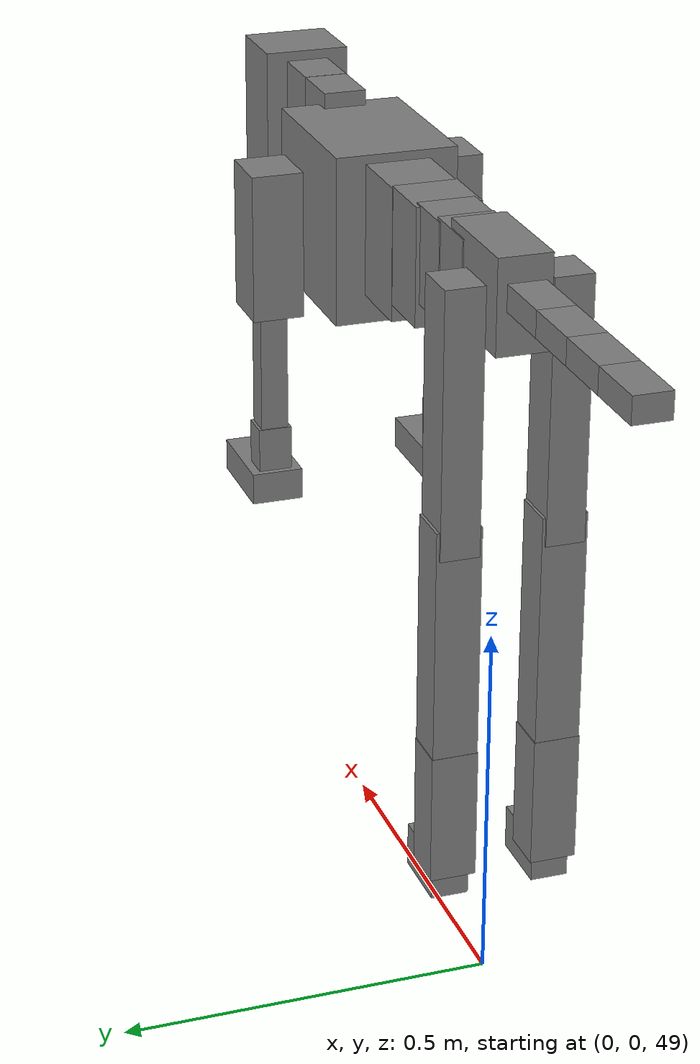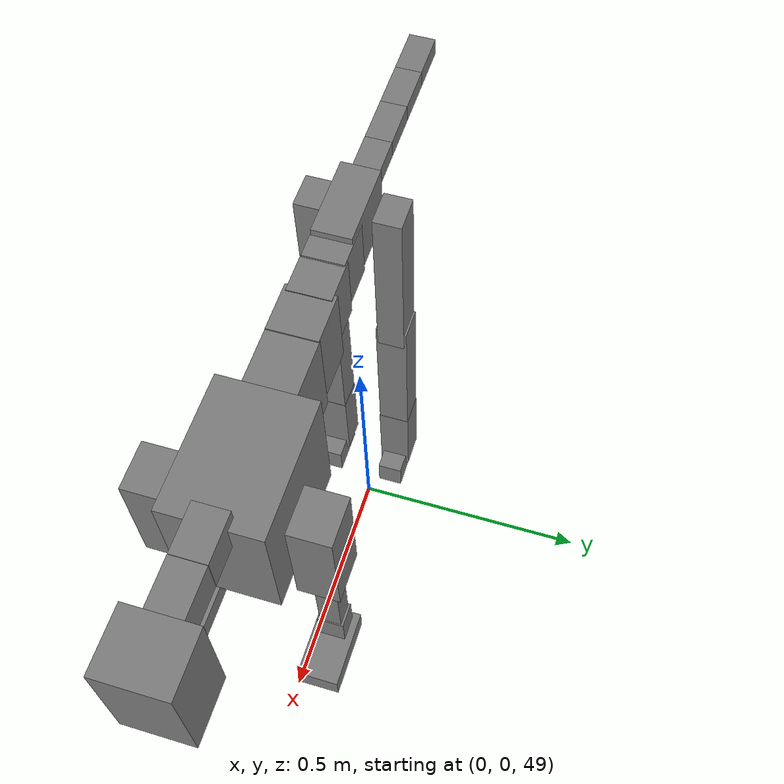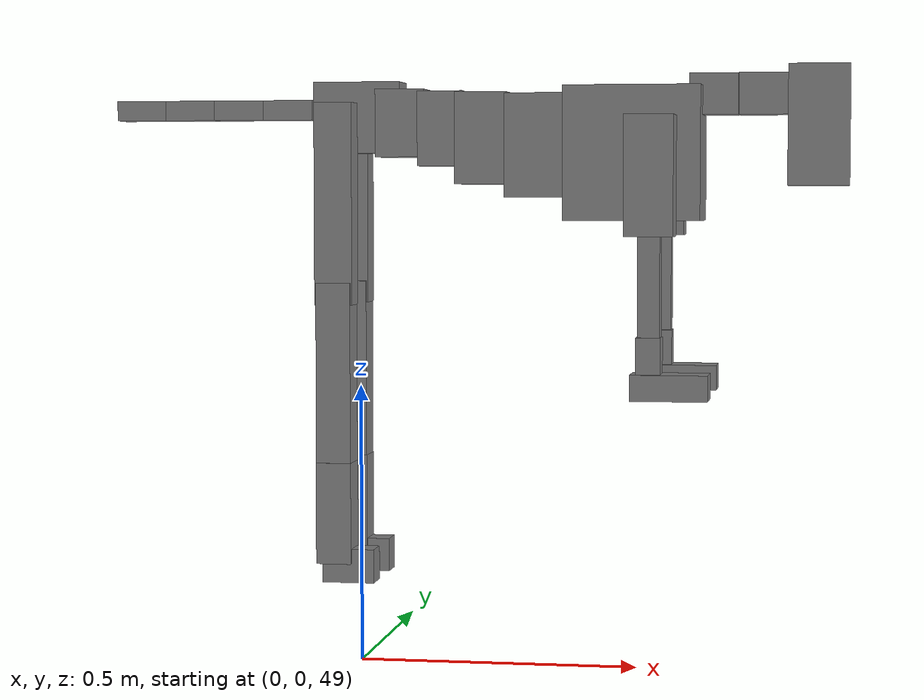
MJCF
<mujoco model="dog">

    <default>
        <joint armature="0.02" stiffness="1" damping="0.2" limited="true"/>
        <geom condim="3" friction="1 0.05 0.05" margin="0.01"/>
        <motor ctrllimited="true" ctrlrange="-1.0 1.0" forcelimited="true" gear="50"/>
    </default>

    <compiler inertiafromgeom="true" angle="radian"/>

    <option timestep="0.016" iterations="50" tolerance="1e-10" solver="Newton" jacobian="dense" cone="pyramidal"/>

    <size nconmax="20000" njmax="60000" nstack="5000000"/>
    <visual>
        <map force="0.1" zfar="30"/>
        <rgba haze="0.15 0.25 0.35 1"/>
        <quality shadowsize="2048"/>
        <global offwidth="800" offheight="800"/>
    </visual>

    <asset>
        <texture type="skybox" builtin="gradient" rgb1="0.3 0.5 0.7" rgb2="0 0 0" width="512" height="512"/>
        <texture name="texplane" type="2d" builtin="checker" rgb1=".2 .3 .4" rgb2=".1 0.15 0.2" width="512" height="512"
                 mark="cross" markrgb=".8 .8 .8"/>
        <texture name="texgeom" type="cube" builtin="flat" mark="cross" width="127" height="1278" rgb1="0.8 0.6 0.4"
                 rgb2="0.8 0.6 0.4" markrgb="1 1 1" random="0.01"/>

        <material name="matplane" reflectance="0.3" texture="texplane" texrepeat="1 1" texuniform="true"/>
        <material name="matgeom" texture="texgeom" texuniform="true" rgba="0.8 0.6 .4 1"/>
    </asset>

    <worldbody>
        <geom name="floor" pos="0 0 0" size="0 0 .25" type="plane" material="matplane" condim="3"/>

        <light directional="false" diffuse=".2 .2 .2" specular="0 0 0" pos="0 0 5" dir="0 0 -1" castshadow="false"/>
        <light mode="targetbodycom" target="torso" directional="false" diffuse=".8 .8 .8" specular="0.3 0.3 0.3"
               pos="0 0 4.0" dir="0 0 -1"/>

        <body name="root" pos="0 0 50">
            <freejoint name="root_1"/>
            <geom type="box" pos="0 0 -0.02" size="0.0774  0.0358  0.063" density="2030"/>

            <body name="spine1" pos="0.054 0 0">
                <joint name="spine1_y" axis="0 1 0" range="0 0.7" limited="true"/>
                <geom type="box" pos="0.02375 0 -0.03" size="0.04375  0.0375  0.05985" density="2030"/>

                <body name="spine2" pos="0.0612 0 0">
                    <joint name="spine2_y" axis="0 1 0" range="-0.15 0.15" limited="true"/>
                    <geom type="box" pos="0.03555  0  -0.04" size="0.04055  0.039  0.06615" density="2030"/>

                    <body name="spine3" pos="0.0730 0 0">
                        <joint name="spine3_y" axis="0 1 0" range="-0.15 0.15" limited="true"/>
                        <geom type="box" pos="0.03555  0  -0.057" size="0.04555  0.0445  0.081" density="2030"/>

                        <body name="spine4" pos="0.0780 0 0">
                            <joint name="spine4_y" axis="0 1 0" range="-0.15 0.15" limited="true"/>
                            <geom type="box" pos="0.05265  0  -0.07" size="0.05265  0.045  0.09135" density="2030"/>

                            <body name="torso" pos="0.1082 0 0">
                                <joint name="torso_y" axis="0 1 0" range="-0.15 0.15" limited="true"/>
                                <geom type="box" pos="0.11925  0  -0.085" size="0.11925  0.085  0.11745"
                                      density="2030"/>

                                <body name="neck1" pos="0.2160  0   0.0180">
                                    <joint name="neck1_y" axis="0 1 0" range="-1.2  -1" limited="true"/>
                                    <geom type="box" pos="0.0423  0  0" size="0.0423  0.03  0.036" density="2325"/>

                                    <body name="neck2" pos="0.0853  0  0">
                                        <joint name="neck2_y" axis="0 1 0" range="0.1  0" limited="true"/>
                                        <geom type="box" pos="0.0423  0  0" size="0.0423  0.03  0.036" density="2325"/>

                                        <body name="head" pos="0.0853  0  0">
                                            <joint name="head_y" axis="0 1 0" range="-0.3  -0.2" limited="true"/>
                                            <geom type="box" pos="0.0531  0  -0.055" size="0.0531  0.06  0.1044"
                                                  density="4030"/>

                                        </body>
                                    </body>
                                </body>

                                <body name="front_shoulder" pos="0.156  0   -0.0480">
                                    <joint name="front_shoulder_y" axis="0 1 0" range="-1 1.5" limited="true"/>
                                    <geom type="box" pos="0 0.13 -0.0771" size="0.0422  0.0361  0.1038" density="1158"/>
                                    <geom type="box" pos="0 -0.13 -0.0771" size="0.0422  0.0361  0.1038"
                                          density="1158"/>

                                    <body name="front_elbow" pos="0  0  -0.1543">
                                        <joint name="front_elbow_y" axis="0 1 0" range="-2 0" limited="true"/>
                                        <geom type="box" pos="0 0.13 -0.1057" size="0.0190  0.0194  0.1057"
                                              density="1081"/>
                                        <geom type="box" pos="0 -0.13 -0.1057" size="0.0190  0.0194  0.1057"
                                              density="1081"/>

                                        <body name="front_wrist" pos="0  0  -0.2115">
                                            <joint name="front_wrist_y" axis="0 1 0" range="-0.2 0" limited="true"/>
                                            <geom type="box" pos="0 0.13 -0.0324" size="0.0212  0.0236  0.0455"
                                                  density="1664"/>
                                            <geom type="box" pos="0 -0.13 -0.0324" size="0.0212  0.0236  0.0455"
                                                  density="1664"/>

                                            <body name="front_finger_end" pos="0  0  -0.0648">
                                                <joint name="front_finger_y" axis="0 1 0" range="-0.4 1"
                                                       limited="true"/>
                                                <geom type="box" pos="0.0363  0.13  -0.0075"
                                                      size="0.0665  0.0363  0.0225" density="1515"/>
                                                <geom type="box" pos="0.0363  -0.13  -0.0075"
                                                      size="0.0665  0.0363  0.0225" density="1515"/>

                                            </body>

                                        </body>
                                    </body>
                                </body>

                            </body>
                        </body>
                    </body>
                </body>
            </body>

            <body name="back_hip" pos="-0.03 0 -0.018">
                <joint name="back_hip_y" axis="0 1 0" range="-1.5 0.3" limited="true"/>
                <geom type="box" pos="0 0.07 -0.1551" size="0.0335  0.0263  0.1779" density="1154"/>
                <geom type="box" pos="0 -0.07 -0.1551" size="0.0335  0.0263  0.1779" density="1154"/>

                <body name="back_knee" pos="0  0  -0.3101">
                    <joint name="back_knee_y" axis="0 1 0" range="0 2.8" limited="true"/>
                    <geom type="box" pos="0 0.07 -0.1570" size="0.0307  0.0303  0.1725" density="1227"/>
                    <geom type="box" pos="0 -0.07 -0.1570" size="0.0307  0.0303  0.1725" density="1227"/>

                    <body name="back_ankle" pos="0  0  -0.3139">
                        <joint name="back_ankle_y" axis="0 1 0" range="-2.2 0" limited="true"/>
                        <geom type="box" pos="0 0.07 -0.0787" size="0.0312  0.0312  0.0899" density="1284"/>
                        <geom type="box" pos="0 -0.07 -0.0787" size="0.0312  0.0312  0.0899" density="1284"/>

                        <body name="back_toe_end" pos="0  0  -0.1573">
                            <joint name="back_toe_y" axis="0 1 0" range="-0.4 1" limited="true"/>
                            <geom type="box" pos="0.0252  0.07  -0.0150" size="0.0462  0.0252  0.0300" density="1515"/>
                            <geom type="box" pos="0.0252  -0.07  -0.0150" size="0.0462  0.0252  0.0300" density="1515"/>

                        </body>
                    </body>
                </body>
            </body>

            <body name="tail1" pos="-0.074 0 -0.006">
                <joint name="tail1_y" axis="0 1 0" range="-0.2 0.2" limited="true"/>
                <geom type="box" pos="-0.0536  0  0" size="0.045  0.025  0.0175" density="1587"/>

                <body name="tail2" pos="-0.09 0 0">
                    <joint name="tail2_y" axis="0 1 0" range="-0.2 0.2" limited="true"/>
                    <geom type="box" pos="-0.0536  0  0" size="0.045  0.025  0.0175" density="1587"/>

                    <body name="tail3" pos="-0.09 0 0">
                        <joint name="tail3_y" axis="0 1 0" range="-0.2 0.2" limited="true"/>
                        <geom type="box" pos="-0.0536  0  0" size="0.045  0.025  0.0175" density="1587"/>

                        <body name="tail4" pos="-0.09 0 0">
                            <joint name="tail4_y" axis="0 1 0" range="-0.2 0.2" limited="true"/>
                            <geom type="box" pos="-0.0536  0  0" size="0.045  0.025  0.0175" density="1587"/>

                        </body>
                    </body>
                </body>
            </body>
        </body>
    </worldbody>

    <actuator>
        <motor joint="spine1_y" forcerange="-150 150     "/>
        <motor joint="spine2_y" forcerange="-150 150     "/>
        <motor joint="spine3_y" forcerange="-150 150     "/>
        <motor joint="spine4_y" forcerange="-150 150     "/>
        <motor joint="torso_y" forcerange="-150 150     "/>
        <motor joint="neck1_y" forcerange="-100 100       "/>
        <motor joint="neck2_y" forcerange="-100 100       "/>
        <motor joint="head_y" forcerange="-150 150       "/>
        <motor joint="front_shoulder_y" forcerange="-187.74 152.76"/>
        <motor joint="front_elbow_y" forcerange="-119.04 122.07"/>
        <motor joint="front_wrist_y" forcerange="-132.58 56.14"/>
        <motor joint="front_finger_y" forcerange="-53.93 99.50"/>
        <motor joint="back_hip_y" forcerange="-239.95 310.28"/>
        <motor joint="back_knee_y" forcerange="-264.82 375.42"/>
        <motor joint="back_angle_y" forcerange="-191.27 208.09"/>
        <motor joint="back_toe_y" forcerange="-100.91 20.71"/>
        <motor joint="tail1_y" forcerange="-50 50     "/>
        <motor joint="tail2_y" forcerange="-50 50     "/>
        <motor joint="tail3_y" forcerange="-50 50     "/>
        <motor joint="tail4_y" forcerange="-50 50     "/>
    </actuator>
</mujoco>
